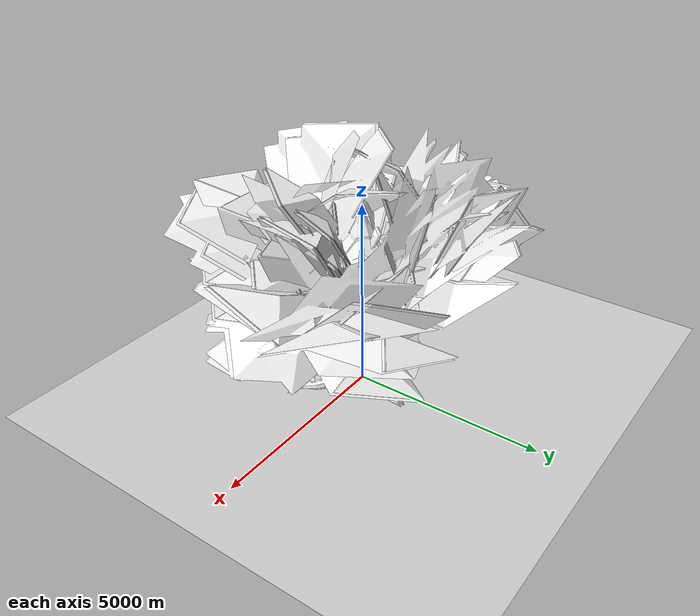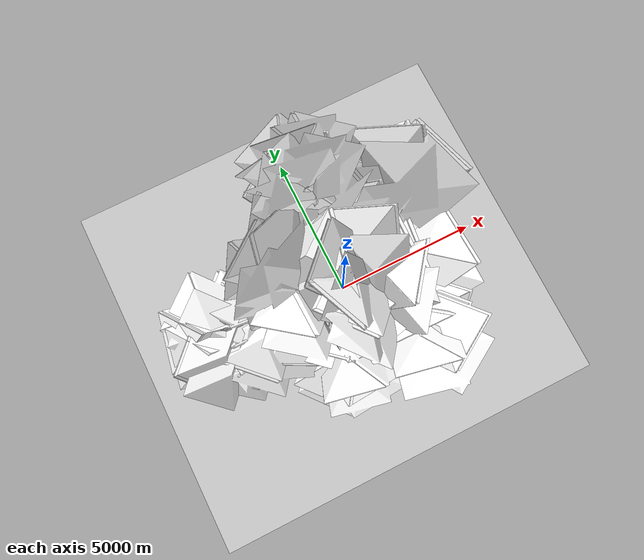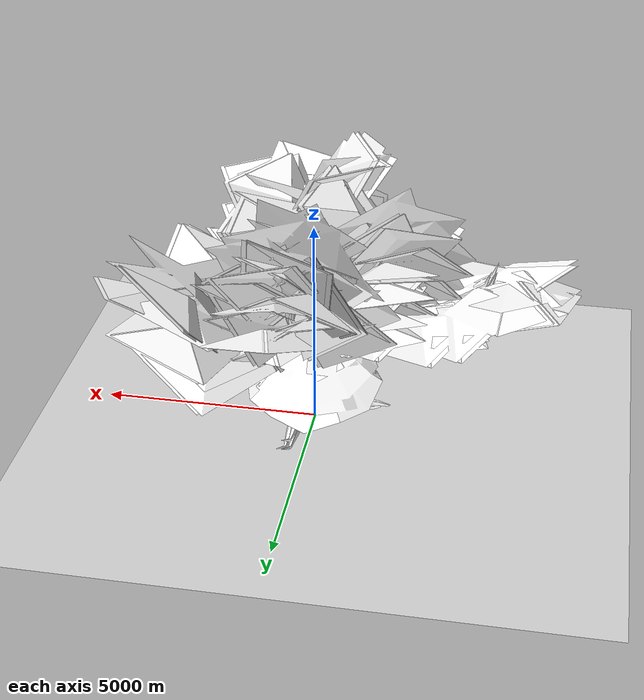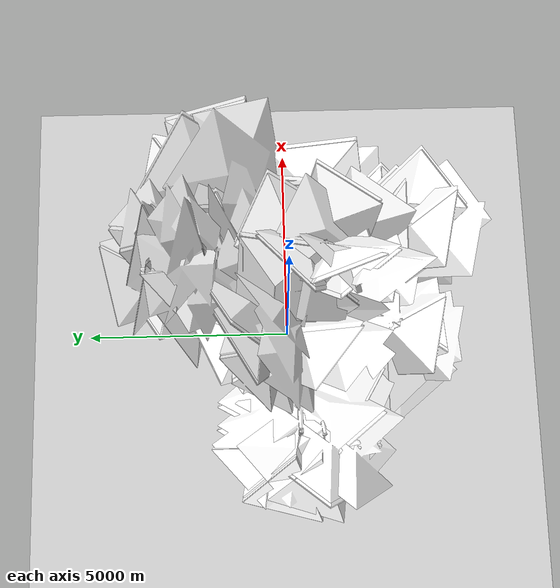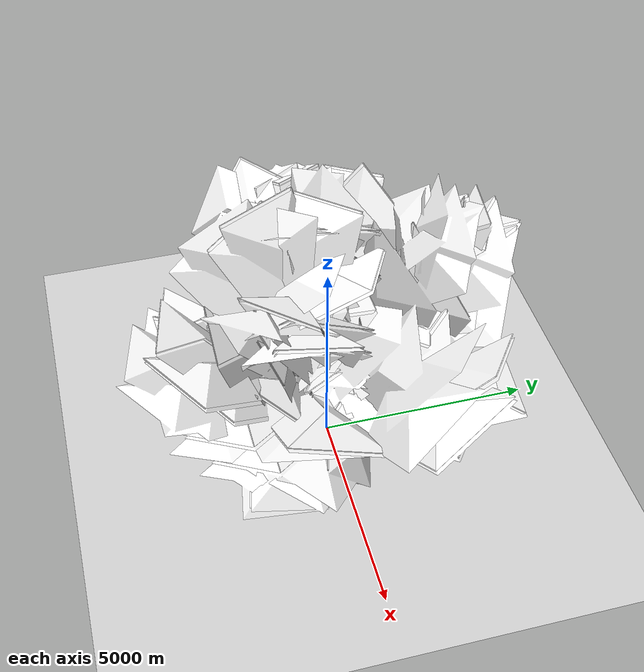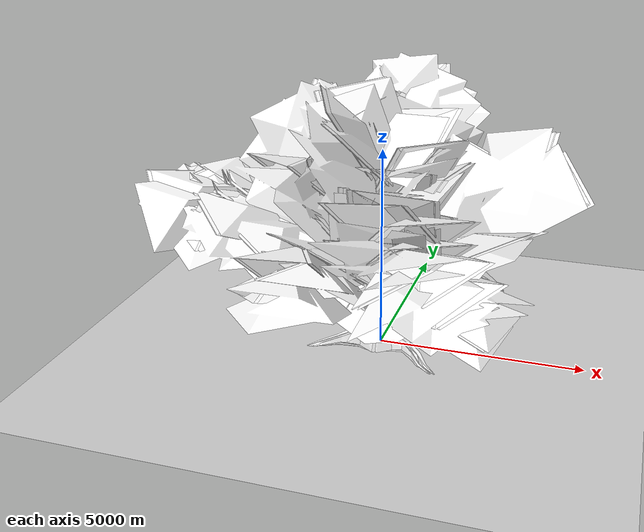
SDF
<sdf version="1.9">
 <world name="px4_gz">
  <physics type="ode">
   <max_step_size>0.004</max_step_size>
   <real_time_factor>1.0</real_time_factor>
   <real_time_update_rate>250</real_time_update_rate>
  </physics>
  <plugin name="gz::sim::systems::Physics" filename="gz-sim-physics-system"/>
  <plugin name="gz::sim::systems::UserCommands" filename="gz-sim-user-commands-system"/>
  <plugin name="gz::sim::systems::SceneBroadcaster" filename="gz-sim-scene-broadcaster-system"/>
  <plugin name="gz::sim::systems::Contact" filename="gz-sim-contact-system"/>
  <plugin name="gz::sim::systems::Imu" filename="gz-sim-imu-system"/>
  <plugin name="gz::sim::systems::AirPressure" filename="gz-sim-air-pressure-system"/>
  <plugin name="gz::sim::systems::Sensors" filename="gz-sim-sensors-system">
   <render_engine>ogre2</render_engine>
  </plugin>
  <gravity>0 0 -9.8</gravity>
  <magnetic_field>6e-06 2.3e-05 -4.2e-05</magnetic_field>
  <atmosphere type="adiabatic"/>
  <scene>
   <grid>false</grid>
   <ambient>0.4 0.4 0.4 1</ambient>
   <background>0.7 0.7 0.7 1</background>
   <shadows>true</shadows>
  </scene>
  <model name="ground_plane">
   <static>true</static>
   <link name="link">
    <collision name="collision">
     <geometry><plane><normal>0 0 1</normal><size>1 1</size></plane></geometry>
    </collision>
    <visual name="visual">
     <geometry><plane><normal>0 0 1</normal><size>100 100</size></plane></geometry>
     <material>
      <ambient>0.8 0.8 0.8 1</ambient>
      <diffuse>0.8 0.8 0.8 1</diffuse>
      <specular>0.8 0.8 0.8 1</specular>
     </material>
    </visual>
    <inertial>
     <mass>1</mass>
     <inertia><ixx>1</ixx><ixy>0</ixy><ixz>0</ixz><iyy>1</iyy><iyz>0</iyz><izz>1</izz></inertia>
    </inertial>
   </link>
  </model>
  <light name="sunUTC" type="directional">
   <pose>0 0 500 0 -0 0</pose>
   <intensity>1</intensity>
   <direction>0.001 0.625 -0.78</direction>
   <diffuse>0.904 0.904 0.904 1</diffuse>
   <specular>0.271 0.271 0.271 1</specular>
   <attenuation><range>2000</range><linear>0</linear><constant>1</constant><quadratic>0</quadratic></attenuation>
   <spot><inner_angle>0</inner_angle><outer_angle>0</outer_angle><falloff>0</falloff></spot>
  </light>
  <include>
   <name>pine_tree_1</name>
   <uri>package://px4_gz_description/models/Pine tree</uri>
   <pose>4 7 0 0 0 0</pose>
  </include>
  <include>
   <name>pine_tree_2</name>
   <uri>package://px4_gz_description/models/Pine tree</uri>
   <pose>6.1 7.6 0 0 0 0</pose>
  </include>
  <include>
   <name>pine_tree_3</name>
   <uri>package://px4_gz_description/models/Pine tree</uri>
   <pose>19.3 -14 0 0 0 0</pose>
  </include>
  <include>
   <name>pine_tree_4</name>
   <uri>package://px4_gz_description/models/Pine tree</uri>
   <pose>16 -11.5 0 0 0 0</pose>
  </include>
  <include>
   <name>oak_tree_1</name>
   <uri>package://px4_gz_description/models/Oak tree</uri>
   <pose>10 0 0 0 0 0</pose>
  </include>
  <include>
   <name>oak_tree_2</name>
   <uri>package://px4_gz_description/models/Oak tree</uri>
   <pose>10.25 -4.25 0 0 0 0</pose>
  </include>
  <include>
   <name>oak_tree_3</name>
   <uri>package://px4_gz_description/models/Oak tree</uri>
   <pose>20.2 14.4 0 0 0 0</pose>
  </include>
  <include>
   <name>oak_tree_4</name>
   <uri>package://px4_gz_description/models/Oak tree</uri>
   <pose>30 8.5 0 0 0 0</pose>
  </include>
  <include>
   <name>oak_tree_5</name>
   <uri>package://px4_gz_description/models/Oak tree</uri>
   <pose>136.2 -0.4 0 0 0 0</pose>
  </include>
  <include>
   <name>oak_tree_6</name>
   <uri>package://px4_gz_description/models/Oak tree</uri>
   <pose>38 -9.8 0 0 0 0</pose>
  </include>
  <include>
   <name>oak_tree_7</name>
   <uri>package://px4_gz_description/models/Oak tree</uri>
   <pose>38.6 -4.6 0 0 0 0</pose>
  </include>
  <include>
   <name>oak_tree_8</name>
   <uri>package://px4_gz_description/models/Oak tree</uri>
   <pose>16 30 1.6 0.15 0 0</pose>
  </include>
 </world>
</sdf>

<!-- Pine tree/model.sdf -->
<sdf version="1.7">
  <model name="Pine Tree">
    <static>true</static>
    <link name="link">
      <collision name="collision">
        <geometry>
          <mesh>
            <uri>package://px4_gz_description/models/Pine tree/meshes/pine_tree.dae</uri>
          </mesh>
        </geometry>
      </collision>
      <visual name="branch">
        <geometry>
          <mesh>
            <uri>package://px4_gz_description/models/Pine tree/meshes/pine_tree.dae</uri>
            <submesh>
              <name>Branch</name>
            </submesh>
          </mesh>
        </geometry>
        <material>
          <double_sided>true</double_sided>
          <diffuse>1.0 1.0 1.0</diffuse>
          <script>
            <uri>package://px4_gz_description/models/Pine tree/materials/scripts/</uri>
            <uri>package://px4_gz_description/models/Pine tree/materials/textures/</uri>
            <name>PineTree/Branch</name>
          </script>

          <pbr>
            <metal>
              <albedo_map>package://px4_gz_description/models/Pine tree/materials/textures/branch_2_diffuse.png</albedo_map>
            </metal>
          </pbr>
        </material>
      </visual>
      <visual name="bark">
        <geometry>
          <mesh>
            <uri>package://px4_gz_description/models/Pine tree/meshes/pine_tree.dae</uri>
            <submesh>
              <name>Bark</name>
            </submesh>
          </mesh>
        </geometry>
        <material>
          <diffuse>1.0 1.0 1.0</diffuse>
          <script>
            <uri>package://px4_gz_description/models/Pine tree/materials/scripts/</uri>
            <uri>package://px4_gz_description/models/Pine tree/materials/textures/</uri>
            <name>PineTree/Bark</name>
          </script>

          <pbr>
            <metal>
              <albedo_map>package://px4_gz_description/models/Pine tree/materials/textures/bark_diffuse.png</albedo_map>
            </metal>
          </pbr>
        </material>
      </visual>
    </link>
  </model>
</sdf>

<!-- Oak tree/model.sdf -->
<sdf version="1.7">
  <model name="Oak tree">
    <static>true</static>
    <link name="link">
      <collision name="collision">
        <geometry>
          <mesh>
            <uri>package://px4_gz_description/models/Oak tree/meshes/oak_tree.dae</uri>
          </mesh>
        </geometry>
      </collision>
      <visual name="branch">
        <geometry>
          <mesh>
            <uri>package://px4_gz_description/models/Oak tree/meshes/oak_tree.dae</uri>
            <submesh>
              <name>Branch</name>
            </submesh>
          </mesh>
        </geometry>
        <material>
          <double_sided>true</double_sided>
          <diffuse>1.0 1.0 1.0</diffuse>
          <script>
            <uri>package://px4_gz_description/models/Oak tree/materials/scripts/</uri>
            <uri>package://px4_gz_description/models/Oak tree/materials/textures/</uri>
            <name>OakTree/Branch</name>
          </script>

          <pbr>
            <metal>
              <albedo_map>package://px4_gz_description/models/Oak tree/materials/textures/branch_diffuse.png</albedo_map>
            </metal>
          </pbr>
        </material>
      </visual>
      <visual name="bark">
        <geometry>
          <mesh>
            <uri>package://px4_gz_description/models/Oak tree/meshes/oak_tree.dae</uri>
            <submesh>
              <name>Bark</name>
            </submesh>
          </mesh>
        </geometry>
        <material>
          <diffuse>1.0 1.0 1.0</diffuse>
          <script>
            <uri>package://px4_gz_description/models/Oak tree/materials/scripts/</uri>
            <uri>package://px4_gz_description/models/Oak tree/materials/textures/</uri>
            <name>OakTree/Bark</name>
          </script>

          <pbr>
            <metal>
              <albedo_map>package://px4_gz_description/models/Oak tree/materials/textures/bark_diffuse.png</albedo_map>
            </metal>
          </pbr>
        </material>
      </visual>
    </link>
  </model>
</sdf>
